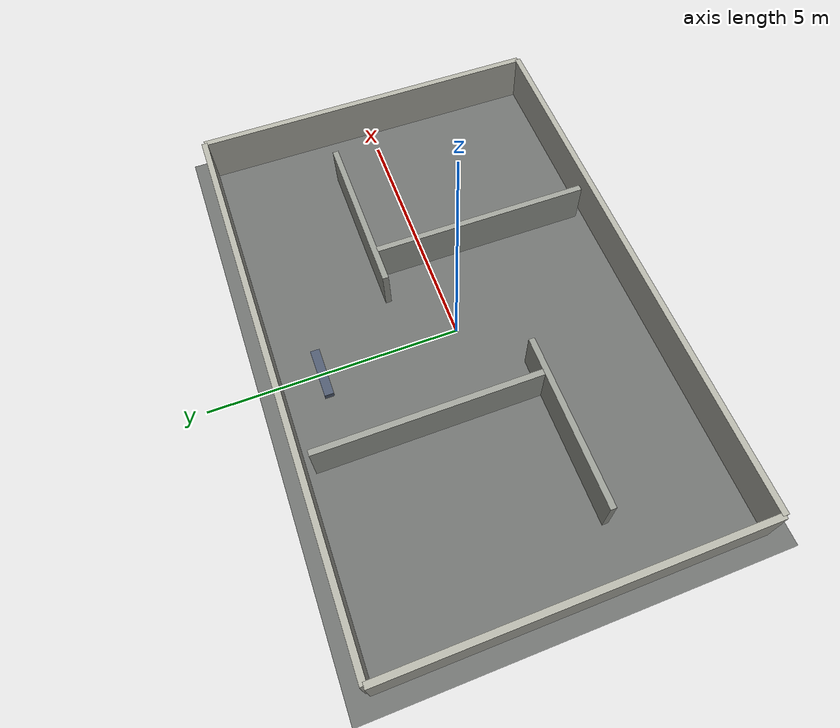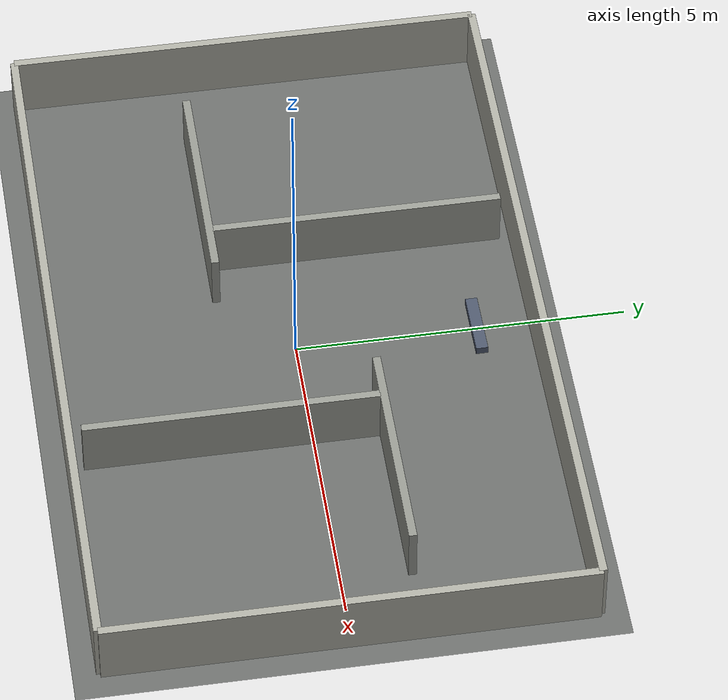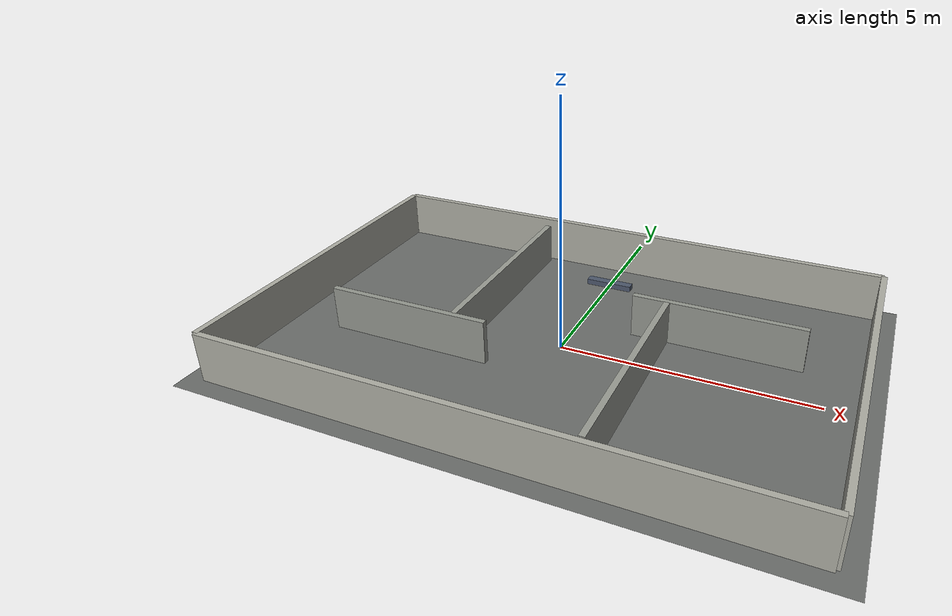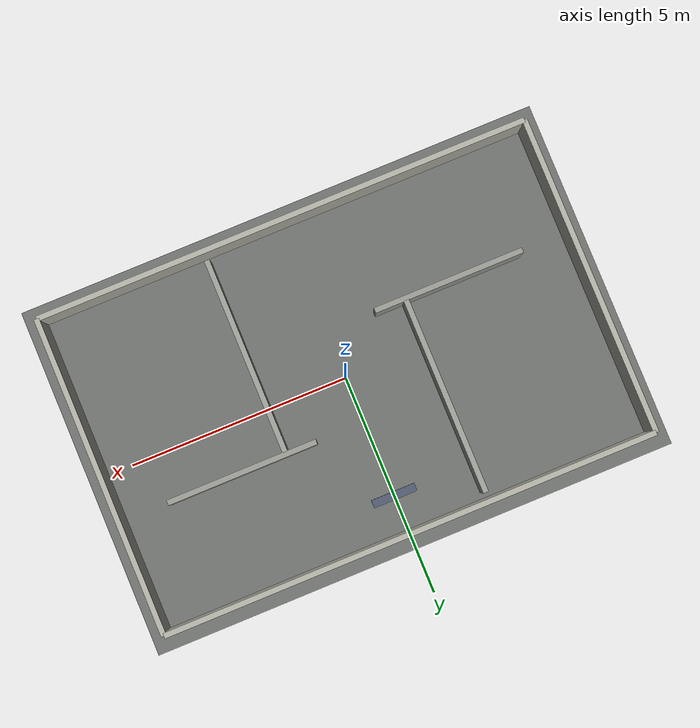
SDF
<?xml version="1.0"?>
<sdf version="1.9">
  <world name="brover_e5_indoor_corridor">
    <plugin filename="gz-sim-physics-system" name="gz::sim::systems::Physics"/>
    <plugin filename="gz-sim-user-commands-system" name="gz::sim::systems::UserCommands"/>
    <plugin filename="gz-sim-scene-broadcaster-system" name="gz::sim::systems::SceneBroadcaster"/>
    <plugin filename="gz-sim-sensors-system" name="gz::sim::systems::Sensors">
      <render_engine>ogre2</render_engine>
    </plugin>

    <gravity>0 0 -9.81</gravity>
    <atmosphere type="adiabatic"/>
    <scene>
      <ambient>0.36 0.36 0.36 1</ambient>
      <background>0.62 0.64 0.66 1</background>
      <shadows>true</shadows>
    </scene>

    <light name="ceiling_light" type="point">
      <cast_shadows>true</cast_shadows>
      <pose>0 0 4.5 0 0 0</pose>
      <diffuse>0.90 0.88 0.82 1</diffuse>
      <specular>0.08 0.08 0.08 1</specular>
      <attenuation>
        <range>18</range>
        <constant>0.6</constant>
        <linear>0.02</linear>
        <quadratic>0.001</quadratic>
      </attenuation>
    </light>

    <model name="floor">
      <static>true</static>
      <link name="link">
        <collision name="collision">
          <geometry>
            <plane>
              <normal>0 0 1</normal>
              <size>12 8</size>
            </plane>
          </geometry>
          <surface>
            <friction>
              <ode>
                <mu>1.0</mu>
                <mu2>1.0</mu2>
              </ode>
            </friction>
          </surface>
        </collision>
        <visual name="visual">
          <geometry>
            <plane>
              <normal>0 0 1</normal>
              <size>12 8</size>
            </plane>
          </geometry>
          <material>
            <ambient>0.42 0.43 0.42 1</ambient>
            <diffuse>0.42 0.43 0.42 1</diffuse>
            <specular>0.02 0.02 0.02 1</specular>
          </material>
        </visual>
      </link>
    </model>

    <model name="north_wall">
      <static>true</static>
      <pose>0 3.6 0.5 0 0 0</pose>
      <link name="link">
        <collision name="collision"><geometry><box><size>11.2 0.12 1.0</size></box></geometry></collision>
        <visual name="visual">
          <geometry><box><size>11.2 0.12 1.0</size></box></geometry>
          <material><diffuse>0.68 0.68 0.64 1</diffuse></material>
        </visual>
      </link>
    </model>

    <model name="south_wall">
      <static>true</static>
      <pose>0 -3.6 0.5 0 0 0</pose>
      <link name="link">
        <collision name="collision"><geometry><box><size>11.2 0.12 1.0</size></box></geometry></collision>
        <visual name="visual">
          <geometry><box><size>11.2 0.12 1.0</size></box></geometry>
          <material><diffuse>0.68 0.68 0.64 1</diffuse></material>
        </visual>
      </link>
    </model>

    <model name="west_wall">
      <static>true</static>
      <pose>-5.6 0 0.5 0 0 0</pose>
      <link name="link">
        <collision name="collision"><geometry><box><size>0.12 7.2 1.0</size></box></geometry></collision>
        <visual name="visual">
          <geometry><box><size>0.12 7.2 1.0</size></box></geometry>
          <material><diffuse>0.68 0.68 0.64 1</diffuse></material>
        </visual>
      </link>
    </model>

    <model name="east_wall">
      <static>true</static>
      <pose>5.6 0 0.5 0 0 0</pose>
      <link name="link">
        <collision name="collision"><geometry><box><size>0.12 7.2 1.0</size></box></geometry></collision>
        <visual name="visual">
          <geometry><box><size>0.12 7.2 1.0</size></box></geometry>
          <material><diffuse>0.68 0.68 0.64 1</diffuse></material>
        </visual>
      </link>
    </model>

    <model name="left_partition">
      <static>true</static>
      <pose>-1.8 1.2 0.45 0 0 0</pose>
      <link name="link">
        <collision name="collision"><geometry><box><size>0.12 4.4 0.9</size></box></geometry></collision>
        <visual name="visual">
          <geometry><box><size>0.12 4.4 0.9</size></box></geometry>
          <material><diffuse>0.60 0.61 0.58 1</diffuse></material>
        </visual>
      </link>
    </model>

    <model name="right_partition">
      <static>true</static>
      <pose>1.8 -1.2 0.45 0 0 0</pose>
      <link name="link">
        <collision name="collision"><geometry><box><size>0.12 4.4 0.9</size></box></geometry></collision>
        <visual name="visual">
          <geometry><box><size>0.12 4.4 0.9</size></box></geometry>
          <material><diffuse>0.60 0.61 0.58 1</diffuse></material>
        </visual>
      </link>
    </model>

    <model name="upper_cross_wall">
      <static>true</static>
      <pose>2.8 1.05 0.45 0 0 0</pose>
      <link name="link">
        <collision name="collision"><geometry><box><size>3.4 0.12 0.9</size></box></geometry></collision>
        <visual name="visual">
          <geometry><box><size>3.4 0.12 0.9</size></box></geometry>
          <material><diffuse>0.58 0.59 0.56 1</diffuse></material>
        </visual>
      </link>
    </model>

    <model name="lower_cross_wall">
      <static>true</static>
      <pose>-2.8 -1.05 0.45 0 0 0</pose>
      <link name="link">
        <collision name="collision"><geometry><box><size>3.4 0.12 0.9</size></box></geometry></collision>
        <visual name="visual">
          <geometry><box><size>3.4 0.12 0.9</size></box></geometry>
          <material><diffuse>0.58 0.59 0.56 1</diffuse></material>
        </visual>
      </link>
    </model>

    <model name="door_marker">
      <static>true</static>
      <pose>0.0 2.75 0.06 0 0 0</pose>
      <link name="link">
        <collision name="collision"><geometry><box><size>1.0 0.18 0.12</size></box></geometry></collision>
        <visual name="visual">
          <geometry><box><size>1.0 0.18 0.12</size></box></geometry>
          <material><diffuse>0.30 0.34 0.42 1</diffuse></material>
        </visual>
      </link>
    </model>
  </world>
</sdf>
